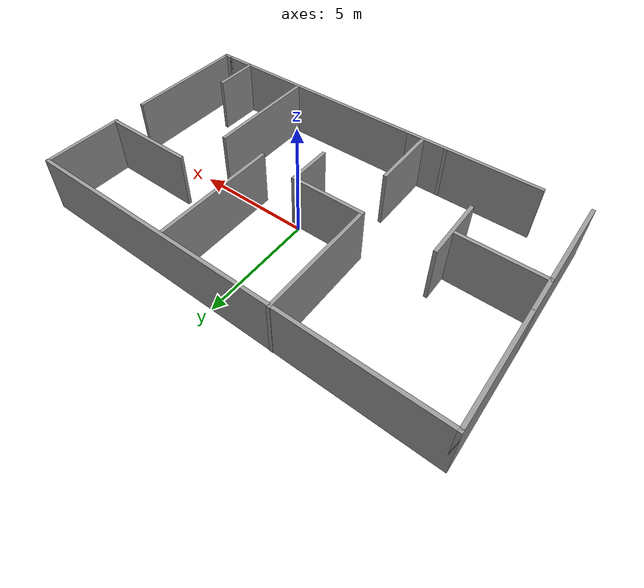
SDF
<?xml version='1.0'?>
<sdf version='1.7'>
  <model name='maze'>
    <pose>-0.310003 -0.169355 0 0 -0 0</pose>
    <link name='Wall_19'>
      <collision name='Wall_19_Collision'>
        <geometry>
          <box>
            <size>5.5 0.15 2.5</size>
          </box>
        </geometry>
        <pose>0 0 1.25 0 -0 0</pose>
      </collision>
      <visual name='Wall_19_Visual'>
        <pose>0 0 1.25 0 -0 0</pose>
        <geometry>
          <box>
            <size>5.5 0.15 2.5</size>
          </box>
        </geometry>
        <material>
          <script>
            <uri>file://media/materials/scripts/gazebo.material</uri>
            <name>Gazebo/Grey</name>
          </script>
          <ambient>1 1 1 1</ambient>
        </material>
        <meta>
          <layer>0</layer>
        </meta>
      </visual>
      <pose>-8.95091 -2.43079 0 0 -0 1.5708</pose>
    </link>
    <link name='Wall_20'>
      <collision name='Wall_20_Collision'>
        <geometry>
          <box>
            <size>5 0.15 2.5</size>
          </box>
        </geometry>
        <pose>0 0 1.25 0 -0 0</pose>
      </collision>
      <visual name='Wall_20_Visual'>
        <pose>0 0 1.25 0 -0 0</pose>
        <geometry>
          <box>
            <size>5 0.15 2.5</size>
          </box>
        </geometry>
        <material>
          <script>
            <uri>file://media/materials/scripts/gazebo.material</uri>
            <name>Gazebo/Grey</name>
          </script>
          <ambient>1 1 1 1</ambient>
        </material>
        <meta>
          <layer>0</layer>
        </meta>
      </visual>
      <pose>-8.95091 2.6692 0 0 -0 1.5708</pose>
    </link>
    <link name='Wall_21'>
      <collision name='Wall_21_Collision'>
        <geometry>
          <box>
            <size>18 0.15 2.5</size>
          </box>
        </geometry>
        <pose>0 0 1.25 0 -0 0</pose>
      </collision>
      <visual name='Wall_21_Visual'>
        <pose>0 0 1.25 0 -0 0</pose>
        <geometry>
          <box>
            <size>18 0.15 2.5</size>
          </box>
        </geometry>
        <material>
          <script>
            <uri>file://media/materials/scripts/gazebo.material</uri>
            <name>Gazebo/Grey</name>
          </script>
          <ambient>1 1 1 1</ambient>
        </material>
        <meta>
          <layer>0</layer>
        </meta>
      </visual>
      <pose>-0.025913 5.0942 0 0 -0 0</pose>
    </link>
    <link name='Wall_26'>
      <collision name='Wall_26_Collision'>
        <geometry>
          <box>
            <size>3.5 0.15 2.5</size>
          </box>
        </geometry>
        <pose>0 0 1.25 0 -0 0</pose>
      </collision>
      <visual name='Wall_26_Visual'>
        <pose>0 0 1.25 0 -0 0</pose>
        <geometry>
          <box>
            <size>3.5 0.15 2.5</size>
          </box>
        </geometry>
        <material>
          <script>
            <uri>file://media/materials/scripts/gazebo.material</uri>
            <name>Gazebo/Grey</name>
          </script>
          <ambient>1 1 1 1</ambient>
        </material>
        <meta>
          <layer>0</layer>
        </meta>
      </visual>
      <pose>-7.25852 -1.14811 0 0 -0 0</pose>
    </link>
    <link name='Wall_29'>
      <collision name='Wall_29_Collision'>
        <geometry>
          <box>
            <size>0.15 0.15 2.5</size>
          </box>
        </geometry>
        <pose>0 0 1.25 0 -0 0</pose>
      </collision>
      <visual name='Wall_29_Visual'>
        <pose>0 0 1.25 0 -0 0</pose>
        <geometry>
          <box>
            <size>0.15 0.15 2.5</size>
          </box>
        </geometry>
        <material>
          <script>
            <uri>file://media/materials/scripts/gazebo.material</uri>
            <name>Gazebo/Grey</name>
          </script>
          <ambient>1 1 1 1</ambient>
        </material>
        <meta>
          <layer>0</layer>
        </meta>
      </visual>
      <pose>-3.10091 -5.10579 0 0 -0 0</pose>
    </link>
    <link name='Wall_31'>
      <collision name='Wall_31_Collision'>
        <geometry>
          <box>
            <size>10 0.15 2.5</size>
          </box>
        </geometry>
        <pose>0 0 1.25 0 -0 0</pose>
      </collision>
      <visual name='Wall_31_Visual'>
        <pose>0 0 1.25 0 -0 0</pose>
        <geometry>
          <box>
            <size>10 0.15 2.5</size>
          </box>
        </geometry>
        <material>
          <script>
            <uri>file://media/materials/scripts/gazebo.material</uri>
            <name>Gazebo/Grey</name>
          </script>
          <ambient>1 1 1 1</ambient>
        </material>
        <meta>
          <layer>0</layer>
        </meta>
      </visual>
      <pose>3.67591 -5.10908 0 0 -0 0</pose>
    </link>
    <link name='Wall_32'>
      <collision name='Wall_32_Collision'>
        <geometry>
          <box>
            <size>0.5 0.15 2.5</size>
          </box>
        </geometry>
        <pose>0 0 1.25 0 -0 0</pose>
      </collision>
      <visual name='Wall_32_Visual'>
        <pose>0 0 1.25 0 -0 0</pose>
        <geometry>
          <box>
            <size>0.5 0.15 2.5</size>
          </box>
        </geometry>
        <material>
          <script>
            <uri>file://media/materials/scripts/gazebo.material</uri>
            <name>Gazebo/Grey</name>
          </script>
          <ambient>1 1 1 1</ambient>
        </material>
        <meta>
          <layer>0</layer>
        </meta>
      </visual>
      <pose>8.77591 -5.10908 0 0 -0 0</pose>
    </link>
    <link name='Wall_35'>
      <collision name='Wall_35_Collision'>
        <geometry>
          <box>
            <size>2 0.15 2.5</size>
          </box>
        </geometry>
        <pose>0 0 1.25 0 -0 0</pose>
      </collision>
      <visual name='Wall_35_Visual'>
        <pose>0 0 1.25 0 -0 0</pose>
        <geometry>
          <box>
            <size>2 0.15 2.5</size>
          </box>
        </geometry>
        <material>
          <script>
            <uri>file://media/materials/scripts/gazebo.material</uri>
            <name>Gazebo/Grey</name>
          </script>
          <ambient>1 1 1 1</ambient>
        </material>
        <meta>
          <layer>0</layer>
        </meta>
      </visual>
      <pose>7.40322 -4.12797 0 0 -0 1.5708</pose>
    </link>
    <link name='Wall_37'>
      <collision name='Wall_37_Collision'>
        <geometry>
          <box>
            <size>4 0.15 2.5</size>
          </box>
        </geometry>
        <pose>0 0 1.25 0 -0 0</pose>
      </collision>
      <visual name='Wall_37_Visual'>
        <pose>0 0 1.25 0 -0 0</pose>
        <geometry>
          <box>
            <size>4 0.15 2.5</size>
          </box>
        </geometry>
        <material>
          <script>
            <uri>file://media/materials/scripts/gazebo.material</uri>
            <name>Gazebo/Grey</name>
          </script>
          <ambient>1 1 1 1</ambient>
        </material>
        <meta>
          <layer>0</layer>
        </meta>
      </visual>
      <pose>6.88537 1.76865 0 0 -0 3.14159</pose>
    </link>
    <link name='Wall_39'>
      <collision name='Wall_39_Collision'>
        <geometry>
          <box>
            <size>3.5 0.15 2.5</size>
          </box>
        </geometry>
        <pose>0 0 1.25 0 -0 0</pose>
      </collision>
      <visual name='Wall_39_Visual'>
        <pose>0 0 1.25 0 -0 0</pose>
        <geometry>
          <box>
            <size>3.5 0.15 2.5</size>
          </box>
        </geometry>
        <material>
          <script>
            <uri>file://media/materials/scripts/gazebo.material</uri>
            <name>Gazebo/Grey</name>
          </script>
          <ambient>1 1 1 1</ambient>
        </material>
        <meta>
          <layer>0</layer>
        </meta>
      </visual>
      <pose>8.89909 3.4192 0 0 -0 -1.5708</pose>
    </link>
    <link name='Wall_41'>
      <collision name='Wall_41_Collision'>
        <geometry>
          <box>
            <size>5.5 0.15 2.5</size>
          </box>
        </geometry>
        <pose>0 0 1.25 0 -0 0</pose>
      </collision>
      <visual name='Wall_41_Visual'>
        <pose>0 0 1.25 0 -0 0</pose>
        <geometry>
          <box>
            <size>5.5 0.15 2.5</size>
          </box>
        </geometry>
        <material>
          <script>
            <uri>file://media/materials/scripts/gazebo.material</uri>
            <name>Gazebo/Grey</name>
          </script>
          <ambient>1 1 1 1</ambient>
        </material>
        <meta>
          <layer>0</layer>
        </meta>
      </visual>
      <pose>8.95091 -2.43408 0 0 -0 1.5708</pose>
    </link>
    <link name='Wall_49'>
      <collision name='Wall_49_Collision'>
        <geometry>
          <box>
            <size>5.25 0.15 2.5</size>
          </box>
        </geometry>
        <pose>0 0 1.25 0 -0 0</pose>
      </collision>
      <visual name='Wall_49_Visual'>
        <pose>0 0 1.25 0 -0 0</pose>
        <geometry>
          <box>
            <size>5.25 0.15 2.5</size>
          </box>
        </geometry>
        <material>
          <script>
            <uri>file://media/materials/scripts/gazebo.material</uri>
            <name>Gazebo/Grey</name>
          </script>
          <ambient>1 1 1 1</ambient>
        </material>
        <meta>
          <layer>0</layer>
        </meta>
      </visual>
      <pose>-2.47227 2.55908 0 0 -0 -1.5708</pose>
    </link>
    <link name='Wall_50'>
      <collision name='Wall_50_Collision'>
        <geometry>
          <box>
            <size>3.25 0.15 2.5</size>
          </box>
        </geometry>
        <pose>0 0 1.25 0 -0 0</pose>
      </collision>
      <visual name='Wall_50_Visual'>
        <pose>0 0 1.25 0 -0 0</pose>
        <geometry>
          <box>
            <size>3.25 0.15 2.5</size>
          </box>
        </geometry>
        <material>
          <script>
            <uri>file://media/materials/scripts/gazebo.material</uri>
            <name>Gazebo/Grey</name>
          </script>
          <ambient>1 1 1 1</ambient>
        </material>
        <meta>
          <layer>0</layer>
        </meta>
      </visual>
      <pose>-0.922275 0.009081 0 0 -0 0</pose>
    </link>
    <link name='Wall_51'>
      <collision name='Wall_51_Collision'>
        <geometry>
          <box>
            <size>2 0.15 2.5</size>
          </box>
        </geometry>
        <pose>0 0 1.25 0 -0 0</pose>
      </collision>
      <visual name='Wall_51_Visual'>
        <pose>0 0 1.25 0 -0 0</pose>
        <geometry>
          <box>
            <size>2 0.15 2.5</size>
          </box>
        </geometry>
        <material>
          <script>
            <uri>file://media/materials/scripts/gazebo.material</uri>
            <name>Gazebo/Grey</name>
          </script>
          <ambient>1 1 1 1</ambient>
        </material>
        <meta>
          <layer>0</layer>
        </meta>
      </visual>
      <pose>0.627725 -0.915919 0 0 -0 -1.5708</pose>
    </link>
    <link name='Wall_53'>
      <collision name='Wall_53_Collision'>
        <geometry>
          <box>
            <size>5 0.15 2.5</size>
          </box>
        </geometry>
        <pose>0 0 1.25 0 -0 0</pose>
      </collision>
      <visual name='Wall_53_Visual'>
        <pose>0 0 1.25 0 -0 0</pose>
        <geometry>
          <box>
            <size>5 0.15 2.5</size>
          </box>
        </geometry>
        <material>
          <script>
            <uri>file://media/materials/scripts/gazebo.material</uri>
            <name>Gazebo/Grey</name>
          </script>
          <ambient>1 1 1 1</ambient>
        </material>
        <meta>
          <layer>0</layer>
        </meta>
      </visual>
      <pose>4.44563 -2.66072 0 0 -0 1.5708</pose>
    </link>
    <link name='Wall_55'>
      <collision name='Wall_55_Collision'>
        <geometry>
          <box>
            <size>6 0.15 2.5</size>
          </box>
        </geometry>
        <pose>0 0 1.25 0 -0 0</pose>
      </collision>
      <visual name='Wall_55_Visual'>
        <pose>0 0 1.25 0 -0 0</pose>
        <geometry>
          <box>
            <size>6 0.15 2.5</size>
          </box>
        </geometry>
        <material>
          <script>
            <uri>file://media/materials/scripts/gazebo.material</uri>
            <name>Gazebo/Grey</name>
          </script>
          <ambient>1 1 1 1</ambient>
        </material>
        <meta>
          <layer>0</layer>
        </meta>
      </visual>
      <pose>-4.17409 -5.10908 0 0 -0 3.14159</pose>
    </link>
    <link name='Wall_57'>
      <collision name='Wall_57_Collision'>
        <geometry>
          <box>
            <size>2.75 0.15 2.5</size>
          </box>
        </geometry>
        <pose>0 0 1.25 0 -0 0</pose>
      </collision>
      <visual name='Wall_57_Visual'>
        <pose>0 0 1.25 0 -0 0</pose>
        <geometry>
          <box>
            <size>2.75 0.15 2.5</size>
          </box>
        </geometry>
        <material>
          <script>
            <uri>file://media/materials/scripts/gazebo.material</uri>
            <name>Gazebo/Grey</name>
          </script>
          <ambient>1 1 1 1</ambient>
        </material>
        <meta>
          <layer>0</layer>
        </meta>
      </visual>
      <pose>-5.42861 -1.32703 0 0 -0 -1.5708</pose>
    </link>
    <link name='Wall_59'>
      <collision name='Wall_59_Collision'>
        <geometry>
          <box>
            <size>3 0.15 2.5</size>
          </box>
        </geometry>
        <pose>0 0 1.25 0 -0 0</pose>
      </collision>
      <visual name='Wall_59_Visual'>
        <pose>0 0 1.25 0 -0 0</pose>
        <geometry>
          <box>
            <size>3 0.15 2.5</size>
          </box>
        </geometry>
        <material>
          <script>
            <uri>file://media/materials/scripts/gazebo.material</uri>
            <name>Gazebo/Grey</name>
          </script>
          <ambient>1 1 1 1</ambient>
        </material>
        <meta>
          <layer>0</layer>
        </meta>
      </visual>
      <pose>-2.05145 -3.66777 0 0 -0 1.5708</pose>
    </link>
    <link name='Wall_62'>
      <collision name='Wall_62_Collision'>
        <geometry>
          <box>
            <size>5.5 0.15 2.5</size>
          </box>
        </geometry>
        <pose>0 0 1.25 0 -0 0</pose>
      </collision>
      <visual name='Wall_62_Visual'>
        <pose>0 0 1.25 0 -0 0</pose>
        <geometry>
          <box>
            <size>5.5 0.15 2.5</size>
          </box>
        </geometry>
        <material>
          <script>
            <uri>file://media/materials/scripts/gazebo.material</uri>
            <name>Gazebo/Grey</name>
          </script>
          <ambient>1 1 1 1</ambient>
        </material>
        <meta>
          <layer>0</layer>
        </meta>
      </visual>
      <pose>2.49174 2.37187 0 0 -0 -1.5708</pose>
    </link>
    <static>1</static>
  </model>
</sdf>
